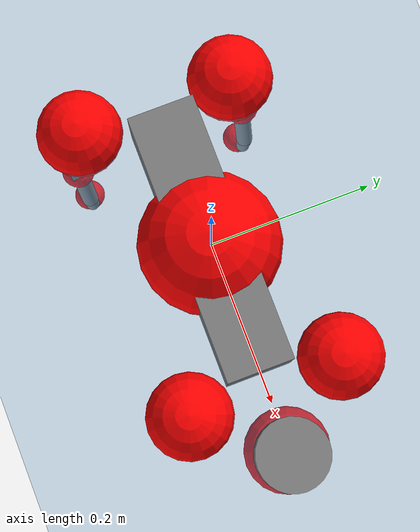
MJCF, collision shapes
<mujoco model="go2">
  <compiler angle="radian" assetdir="assets" balanceinertia="true" inertiafromgeom="false"/>

  <option timestep="0.005" density="1.2" viscosity="2e-05"/>

  <size nkey="1"/>

  <visual>
    <quality shadowsize="8192"/>
    <map shadowclip="0.5"/>
  </visual>

  <default>
    <default class="/">
      <geom contype="0" conaffinity="0" group="1" solref="-1000 -80"/>
      <site size="0.01 0.005 0.005" group="5"/>
      <general forcelimited="true" biastype="affine" gainprm="20" biasprm="0 -20 -0.5"/>
      <default class="go2">
        <joint armature="0.01" damping="0.01" frictionloss="0.2"/>
        <geom condim="1" margin="0.001"/>
        <default class="visual">
          <geom type="mesh" group="2"/>
        </default>
        <default class="collision">
          <geom group="3"/>
          <default class="foot">
            <geom size="0.022 0 0" condim="6" priority="1" friction="0.8 0.02 0.01" solimp="0.015 1 0.022"/>
          </default>
        </default>
        <default class="reward_collision_sphere">
          <geom group="5" rgba="1 0 0 1"/>
        </default>
      </default>
    </default>
  </default>

  <asset>
    <texture type="skybox" colorspace="auto" name="//unnamed_texture_0" builtin="gradient" rgb1="0.95 0.95 0.95" rgb2="0.95 0.95 0.95" width="100" height="600"/>
    <texture type="2d" colorspace="auto" name="texplane" builtin="checker" rgb1="0.345 0.575 0.748" rgb2="0.345 0.575 0.748" markrgb="1 1 1" width="512" height="512"/>
    <material name="MatPlane" class="/" texture="texplane" texuniform="true" texrepeat="2 2" specular="0.9"/>
    <material name="metal" class="/" rgba="0.9 0.95 0.95 1"/>
    <material name="black" class="/" rgba="0 0 0 1"/>
    <material name="white" class="/"/>
    <material name="gray" class="/" rgba="0.671705 0.692426 0.77427 1"/>
    <mesh name="base_0" class="/" file="base_0.obj"/>
    <mesh name="base_1" class="/" file="base_1.obj"/>
    <mesh name="base_2" class="/" file="base_2.obj"/>
    <mesh name="base_3" class="/" file="base_3.obj"/>
    <mesh name="base_4" class="/" file="base_4.obj"/>
    <mesh name="hip_0" class="/" file="hip_0.obj"/>
    <mesh name="hip_1" class="/" file="hip_1.obj"/>
    <mesh name="thigh_0" class="/" file="thigh_0.obj"/>
    <mesh name="thigh_1" class="/" file="thigh_1.obj"/>
    <mesh name="thigh_mirror_0" class="/" file="thigh_mirror_0.obj"/>
    <mesh name="thigh_mirror_1" class="/" file="thigh_mirror_1.obj"/>
    <mesh name="calf_0" class="/" file="calf_0.obj"/>
    <mesh name="calf_1" class="/" file="calf_1.obj"/>
    <mesh name="calf_mirror_0" class="/" file="calf_mirror_0.obj"/>
    <mesh name="calf_mirror_1" class="/" file="calf_mirror_1.obj"/>
    <mesh name="foot" class="/" file="foot.obj"/>
  </asset>

  <worldbody>
    <geom name="floor" class="/" size="100 100 0.125" type="plane" group="0" material="MatPlane"/>
    <light name="toplight_shadow" class="/" pos="0 0 5" dir="0.0990148 0.0990148 -0.990148" type="directional" ambient="0.04 0.04 0.04" diffuse="0.55 0.55 0.55" specular="0.12 0.12 0.12"/>
    <light name="toplight_fill" class="/" pos="0 0 5" dir="0.0990148 0.0990148 -0.990148" type="directional" castshadow="false" ambient="0.04 0.04 0.04" diffuse="0.3 0.3 0.3" specular="0.08 0.08 0.08"/>
    <body name="trunk" childclass="go2" pos="-0.00279092 -0.000693494 -0.00258312" quat="0.999999 -0.000828508 0.00112661 0.000236496">
      <inertial pos="0.016955 0.00224651 -0.00577912" quat="0.000525949 0.722129 -0.00137346 0.691757" mass="4.72424" diaginertia="0.0781232 0.0404649 0.0118924"/>
      <joint name="//unnamed_joint_0" type="free" armature="0" damping="0" frictionloss="0"/>
      <geom name="//unnamed_geom_1" class="visual" material="black" mesh="base_0"/>
      <geom name="//unnamed_geom_2" class="visual" material="black" mesh="base_1"/>
      <geom name="//unnamed_geom_3" class="visual" material="black" mesh="base_2"/>
      <geom name="//unnamed_geom_4" class="visual" material="white" mesh="base_3"/>
      <geom name="//unnamed_geom_5" class="visual" material="gray" mesh="base_4"/>
      <geom name="trunk_1" class="collision" size="0.165381 0.0411035 0.0501155" type="box"/>
      <geom name="trunk_2" class="collision" size="0.0439609 0.0395648" pos="0.266691 0 0.00863757" type="cylinder"/>
      <geom name="trunk_3" class="collision" size="0.0413233" pos="0.274177 0 -0.0518254"/>
      <geom name="//unnamed_geom_9" class="reward_collision_sphere" size="0.0879219"/>
      <geom name="//unnamed_geom_10" class="reward_collision_sphere" size="0.0527531" pos="0.262012 0 -0.0388691"/>
      <site name="imu" pos="-0.0102756 -0.00351999 0.0279529" size="0.00879219"/>
      <camera name="track" pos="0 -1.67628 0" quat="0.707107 0.707107 0 0" mode="trackcom"/>
      <camera name="ego_camera" pos="0.291956 0 0.0388691" quat="-0.5 -0.5 0.5 0.5"/>
      <body name="FL_hip" pos="0.180572 0.038941 -0.00208766" quat="1 -0.000437946 -0.000422023 0.00028294">
        <inertial pos="-0.00766918 0.000790488 -0.000855738" quat="0.492867 0.510311 0.505454 0.491102" mass="0.470001" diaginertia="0.000649182 0.000253185 0.000243307"/>
        <joint name="FL_hip_joint" pos="0 0 0" axis="0.999948 0.00955848 0.00344138" stiffness="0.00403709" range="-1.01155 1.04046" armature="0.0100518" damping="0.00546664" frictionloss="0.181147"/>
        <geom name="//unnamed_geom_11" class="visual" material="metal" mesh="hip_0"/>
        <geom name="//unnamed_geom_12" class="visual" material="gray" mesh="hip_1"/>
        <geom name="//unnamed_geom_13" class="collision" size="0.0404441 0.0175844" pos="0 0.0670514 0" quat="0.707107 0.707107 0 0" type="cylinder"/>
        <geom name="//unnamed_geom_14" class="reward_collision_sphere" size="0.0527531" pos="0 0.05867 0"/>
        <body name="FL_thigh" pos="-0.000470508 0.0796889 -0.00140557" quat="1 6.36614e-05 -4.64431e-05 2.68689e-05">
          <inertial pos="-0.0038324 -0.0202528 -0.0289296" quat="0.830097 0.0810896 -0.0236207 0.551185" mass="0.777755" diaginertia="0.00420371 0.00230947 0.00041734"/>
          <joint name="FL_thigh_joint" pos="0 0 0" axis="0.00701784 0.999896 0.0126092" stiffness="0.0134047" range="-1.56463 3.50723" armature="0.00769101" damping="0.00652304" frictionloss="0.176209"/>
          <geom name="//unnamed_geom_15" class="visual" material="metal" mesh="thigh_0"/>
          <geom name="//unnamed_geom_16" class="visual" material="gray" mesh="thigh_1"/>
          <geom name="//unnamed_geom_17" class="collision" size="0.0936368 0.0107704 0.0149467" pos="0 0 -0.0919901" quat="0.707107 0 0.707107 0" type="box"/>
          <body name="FL_calf" pos="0.000796763 0.0012312 -0.181435" quat="1 8.62329e-07 -2.42166e-06 1.19971e-06">
            <inertial pos="0.00469154 -0.00311254 -0.119193" quat="0.710336 0.00131202 -0.0047606 0.703845" mass="0.167634" diaginertia="0.00110612 0.000602443 2.55494e-05"/>
            <joint name="FL_calf_joint" pos="0 0 0" axis="-0.00906669 0.999901 -0.0107999" stiffness="0.00368211" range="-2.66817 -0.88013" armature="0.00879476" damping="0.00603307" frictionloss="0.183628"/>
            <geom name="//unnamed_geom_18" class="visual" material="gray" mesh="calf_0"/>
            <geom name="//unnamed_geom_19" class="visual" material="black" mesh="calf_1"/>
            <geom name="FL_calf0" class="collision" size="0.0105506 0.0527531" pos="0.00748606 0 -0.0518254" quat="0.994493 0 -0.104807 0" type="cylinder"/>
            <geom name="//unnamed_geom_21" class="collision" size="0.00967141 0.0285746" pos="0.0187151 0 -0.127836" quat="0.999688 0 0.0249974 0" type="cylinder"/>
            <geom name="//unnamed_geom_22" class="visual" pos="0 0 -0.18398" quat="1 0 0 0" material="black" mesh="foot"/>
            <geom name="FL_foot" class="foot" size="0.0190025" pos="-0.00187151 0 -0.18398"/>
            <geom name="//unnamed_geom_24" class="reward_collision_sphere" size="0.0219805"/>
            <geom name="//unnamed_geom_25" class="reward_collision_sphere" size="0.0219805" pos="-0.00187151 0 -0.18398"/>
            <site name="FL_foot" class="foot" pos="-0.00187151 0 -0.18398" size="0.00879219"/>
          </body>
        </body>
      </body>
      <body name="FR_hip" pos="0.183903 -0.0360399 0.00166117" quat="1 -0.000221224 -0.000104499 -0.000337359">
        <inertial pos="-0.00565334 -0.00432405 -0.00110428" quat="0.49573 0.501026 0.499147 0.50406" mass="0.467983" diaginertia="0.000624874 0.000257806 0.000234428"/>
        <joint name="FR_hip_joint" pos="0 0 0" axis="0.999998 0.00180167 0.000421832" range="-0.992972 1.02841" armature="0.00889345" damping="0.0175356" frictionloss="0.189178"/>
        <geom name="//unnamed_geom_26" class="visual" pos="0 -2.23147e-10 -9.57122e-09" quat="4.63268e-05 1 0 0" material="metal" mesh="hip_0"/>
        <geom name="//unnamed_geom_27" class="visual" pos="0 -3.61747e-10 2.36733e-08" quat="4.63268e-05 1 0 0" material="gray" mesh="hip_1"/>
        <geom name="//unnamed_geom_28" class="collision" size="0.0404441 0.0175844" pos="0 -0.0670514 0" quat="0.707107 0.707107 0 0" type="cylinder"/>
        <geom name="//unnamed_geom_29" class="reward_collision_sphere" size="0.0527531" pos="0 -0.05867 0"/>
        <body name="FR_thigh" pos="0.00273076 -0.079819 -0.00187576" quat="1 -0.000242199 -0.000578926 -0.000239855">
          <inertial pos="-0.00349628 0.0189003 -0.0296421" quat="0.553618 -0.0200861 0.0858113 0.828095" mass="0.810809" diaginertia="0.00420845 0.00246558 0.000431338"/>
          <joint name="FR_thigh_joint" pos="0 0 0" axis="-0.00352568 -0.999992 -0.00181426" range="-3.52162 1.6221" armature="0.00777137" damping="0.00959476" frictionloss="0.178627"/>
          <geom name="//unnamed_geom_30" class="visual" material="metal" mesh="thigh_mirror_0"/>
          <geom name="//unnamed_geom_31" class="visual" material="gray" mesh="thigh_mirror_1"/>
          <geom name="//unnamed_geom_32" class="collision" size="0.0936368 0.0107704 0.0149467" pos="0 0 -0.0919901" quat="0.707107 0 0.707107 0" type="box"/>
          <body name="FR_calf" pos="-0.00109536 -0.0016455 -0.182952" quat="1 2.10183e-05 4.50799e-05 -2.72755e-05">
            <inertial pos="0.0058923 0.000732594 -0.121682" quat="0.707509 0.000775768 -0.00949539 0.70664" mass="0.157646" diaginertia="0.00109062 0.000607828 2.47859e-05"/>
            <joint name="FR_calf_joint" pos="0 0 0" axis="-0.00707552 -0.999956 0.00617426" range="0.838627 2.66733" armature="0.010043" damping="0.0156692" frictionloss="0.175914"/>
            <geom name="//unnamed_geom_33" class="visual" material="gray" mesh="calf_mirror_0"/>
            <geom name="//unnamed_geom_34" class="visual" material="black" mesh="calf_mirror_1"/>
            <geom name="FR_calf0" class="collision" size="0.0114298 0.0527531" pos="0.00935757 0 -0.0518254" quat="0.995004 0 -0.0998334 0" type="cylinder"/>
            <geom name="//unnamed_geom_36" class="collision" size="0.00967141 0.0285746" pos="0.0187151 0 -0.127836" quat="0.999688 0 0.0249974 0" type="cylinder"/>
            <geom name="//unnamed_geom_37" class="visual" pos="0 0 -0.18398" quat="1 0 0 0" material="black" mesh="foot"/>
            <geom name="FR_foot" class="foot" size="0.0191365" pos="-0.00187151 0 -0.18398"/>
            <geom name="//unnamed_geom_39" class="reward_collision_sphere" size="0.0219805"/>
            <geom name="//unnamed_geom_40" class="reward_collision_sphere" size="0.0219805" pos="-0.00187151 0 -0.18398"/>
            <site name="FR_foot" class="foot" pos="-0.00187151 0 -0.18398" size="0.00879219"/>
          </body>
        </body>
      </body>
      <body name="RL_hip" pos="-0.181022 0.0359959 -0.000426481" quat="1 -7.16216e-05 -0.000196073 0.000108392">
        <inertial pos="0.00531182 0.00291459 -0.000943604" quat="0.503629 0.500125 0.494915 0.50129" mass="0.476851" diaginertia="0.000659231 0.000240435 0.000230293"/>
        <joint name="RL_hip_joint" pos="0 0 0" axis="-0.999979 -0.000798884 0.0064108" stiffness="0.00287727" range="-1.02725 1.0862" armature="0.0089693" damping="0" frictionloss="0.192923"/>
        <geom name="//unnamed_geom_41" class="visual" pos="-6.27233e-10 0 -1.22952e-07" quat="4.63268e-05 0 1 0" material="metal" mesh="hip_0"/>
        <geom name="//unnamed_geom_42" class="visual" pos="-1.01682e-09 0 -1.09041e-07" quat="4.63268e-05 0 1 0" material="gray" mesh="hip_1"/>
        <geom name="//unnamed_geom_43" class="collision" size="0.0404441 0.0175844" pos="0 0.0670514 0" quat="0.707107 0.707107 0 0" type="cylinder"/>
        <geom name="//unnamed_geom_44" class="reward_collision_sphere" size="0.0527531" pos="0 0.05867 0"/>
        <body name="RL_thigh" pos="-0.000796463 0.0784381 0.00183366" quat="1 2.37977e-05 -6.53005e-06 -2.21884e-05">
          <inertial pos="-0.00561834 -0.0193091 -0.0290518" quat="0.82898 0.0924521 -0.0136617 0.551414" mass="0.80633" diaginertia="0.00429634 0.00246799 0.000423716"/>
          <joint name="RL_thigh_joint" pos="0 0 0" axis="-0.0146068 0.999893 0.000910339" range="-0.561517 4.53492" armature="0.00953249" damping="0" frictionloss="0.174424"/>
          <geom name="//unnamed_geom_45" class="visual" material="metal" mesh="thigh_0"/>
          <geom name="//unnamed_geom_46" class="visual" material="gray" mesh="thigh_1"/>
          <geom name="//unnamed_geom_47" class="collision" size="0.0936368 0.0107704 0.0149467" pos="0 0 -0.0919901" quat="0.707107 0 0.707107 0" type="box"/>
          <body name="RL_calf" pos="-0.00229351 0.00133639 -0.187191" quat="1 1.34041e-05 0.000301925 0.000329844">
            <inertial pos="0.00849017 -0.00336288 -0.119351" quat="0.71815 -0.000390051 -0.0110563 0.695801" mass="0.159451" diaginertia="0.00107232 0.000624584 2.51981e-05"/>
            <joint name="RL_calf_joint" pos="0 0 0" axis="-0.00192072 0.999996 -0.00188292" range="-2.69741 -0.836462" armature="0.00849884" damping="0.00263324" frictionloss="0.200374"/>
            <geom name="//unnamed_geom_48" class="visual" material="gray" mesh="calf_0"/>
            <geom name="//unnamed_geom_49" class="visual" material="black" mesh="calf_1"/>
            <geom name="RL_calf0" class="collision" size="0.0114298 0.0527531" pos="0.00935757 0 -0.0518254" quat="0.995004 0 -0.0998334 0" type="cylinder"/>
            <geom name="//unnamed_geom_51" class="collision" size="0.00967141 0.0285746" pos="0.0187151 0 -0.127836" quat="0.999688 0 0.0249974 0" type="cylinder"/>
            <geom name="//unnamed_geom_52" class="visual" pos="0 0 -0.18398" quat="1 0 0 0" material="black" mesh="foot"/>
            <geom name="RL_foot" class="foot" size="0.0195972" pos="-0.00187151 0 -0.18398"/>
            <geom name="//unnamed_geom_54" class="reward_collision_sphere" size="0.0219805"/>
            <geom name="//unnamed_geom_55" class="reward_collision_sphere" size="0.0219805" pos="-0.00187151 0 -0.18398"/>
            <site name="RL_foot" class="foot" pos="-0.00187151 0 -0.18398" size="0.00879219"/>
          </body>
        </body>
      </body>
      <body name="RR_hip" pos="-0.181122 -0.0409868 -0.00121598" quat="0.999999 -0.000471815 0.000770341 0.000772004">
        <inertial pos="0.00470343 0.000658392 -0.00304209" quat="0.499245 0.497022 0.498239 0.505452" mass="0.467487" diaginertia="0.000628825 0.000243524 0.000226908"/>
        <joint name="RR_hip_joint" pos="0 0 0" axis="-0.999937 0.00976937 0.00558915" stiffness="0.00255103" range="-1.00776 0.997294" armature="0.00766667" damping="0.0027605" frictionloss="0.19063"/>
        <geom name="//unnamed_geom_56" class="visual" pos="6.23853e-10 -2.23147e-10 -1.13381e-07" quat="2.14617e-09 4.63268e-05 4.63268e-05 -1" material="metal" mesh="hip_0"/>
        <geom name="//unnamed_geom_57" class="visual" pos="1.02518e-09 -3.61747e-10 -1.32714e-07" quat="2.14617e-09 4.63268e-05 4.63268e-05 -1" material="gray" mesh="hip_1"/>
        <geom name="//unnamed_geom_58" class="collision" size="0.0404441 0.0175844" pos="0 -0.0670514 0" quat="0.707107 0.707107 0 0" type="cylinder"/>
        <geom name="//unnamed_geom_59" class="reward_collision_sphere" size="0.0527531" pos="0 -0.05867 0"/>
        <body name="RR_thigh" pos="-9.31003e-05 -0.079891 0.00106968" quat="1 6.33188e-05 0.000302659 -4.54051e-05">
          <inertial pos="-0.0061491 0.0216192 -0.0281937" quat="0.552476 -0.0196642 0.0848516 0.828966" mass="0.735392" diaginertia="0.00426028 0.00237206 0.000422401"/>
          <joint name="RR_thigh_joint" pos="0 0 0" axis="-0.000497524 -0.999999 -0.000989991" stiffness="0.00968222" range="-4.56857 0.563037" armature="0.00872974" damping="0.0162007" frictionloss="0.154513"/>
          <geom name="//unnamed_geom_60" class="visual" material="metal" mesh="thigh_mirror_0"/>
          <geom name="//unnamed_geom_61" class="visual" material="gray" mesh="thigh_mirror_1"/>
          <geom name="//unnamed_geom_62" class="collision" size="0.0936368 0.0107704 0.0149467" pos="0 0 -0.0919901" quat="0.707107 0 0.707107 0" type="box"/>
          <body name="RR_calf" pos="0.001535 0.000103096 -0.185054" quat="1 -0.000168749 -0.000253284 3.57682e-06">
            <inertial pos="0.00734891 0.000468742 -0.122473" quat="0.703187 -0.00686649 0.00325954 0.710965" mass="0.152865" diaginertia="0.0010295 0.00059154 2.43413e-05"/>
            <joint name="RR_calf_joint" pos="0 0 0" axis="0.00372032 -0.999993 -0.000216021" range="0.846771 2.77947" armature="0.00785405" damping="0.0125828" frictionloss="0.17607"/>
            <geom name="//unnamed_geom_63" class="visual" material="gray" mesh="calf_mirror_0"/>
            <geom name="//unnamed_geom_64" class="visual" material="black" mesh="calf_mirror_1"/>
            <geom name="RR_calf0" class="collision" size="0.0114298 0.0527531" pos="0.00935757 0 -0.0518254" quat="0.995004 0 -0.0998334 0" type="cylinder"/>
            <geom name="//unnamed_geom_66" class="collision" size="0.00967141 0.0285746" pos="0.0187151 0 -0.127836" quat="0.999688 0 0.0249974 0" type="cylinder"/>
            <geom name="//unnamed_geom_67" class="visual" pos="0 0 -0.18398" quat="1 0 0 0" material="black" mesh="foot"/>
            <geom name="RR_foot" class="foot" size="0.017985" pos="-0.00187151 0 -0.18398"/>
            <geom name="//unnamed_geom_69" class="reward_collision_sphere" size="0.0219805"/>
            <geom name="//unnamed_geom_70" class="reward_collision_sphere" size="0.0219805" pos="-0.00187151 0 -0.18398"/>
            <site name="RR_foot" class="foot" pos="-0.00187151 0 -0.18398" size="0.00879219"/>
          </body>
        </body>
      </body>
    </body>
  </worldbody>

  <contact>
    <pair class="/" geom1="floor" geom2="FL_foot" name="//unnamed_contact_0"/>
    <pair class="/" geom1="floor" geom2="FR_foot" name="//unnamed_contact_1"/>
    <pair class="/" geom1="floor" geom2="RL_foot" name="//unnamed_contact_2"/>
    <pair class="/" geom1="floor" geom2="RR_foot" name="//unnamed_contact_3"/>
  </contact>

  <actuator>
    <general name="FL_hip" class="/" joint="FL_hip_joint" forcerange="-20.3855 20.3855" gainprm="17.146" biasprm="0 -17.146 -0.466698"/>
    <general name="FL_thigh" class="/" joint="FL_thigh_joint" forcerange="-22.6108 22.6108" gainprm="17.146" biasprm="0 -17.146 -0.466698"/>
    <general name="FL_calf" class="/" joint="FL_calf_joint" forcerange="-37.1535 37.1535" gainprm="17.146" biasprm="0 -17.146 -0.466698"/>
    <general name="FR_hip" class="/" joint="FR_hip_joint" forcerange="-20.0124 20.0124" gainprm="17.146" biasprm="0 -17.146 -0.466698"/>
    <general name="FR_thigh" class="/" joint="FR_thigh_joint" forcerange="-22.9475 22.9475" gainprm="17.146" biasprm="0 -17.146 -0.466698"/>
    <general name="FR_calf" class="/" joint="FR_calf_joint" forcerange="-39.6587 39.6587" gainprm="17.146" biasprm="0 -17.146 -0.466698"/>
    <general name="RL_hip" class="/" joint="RL_hip_joint" forcerange="-22.0551 22.0551" gainprm="17.146" biasprm="0 -17.146 -0.466698"/>
    <general name="RL_thigh" class="/" joint="RL_thigh_joint" forcerange="-22.8445 22.8445" gainprm="17.146" biasprm="0 -17.146 -0.466698"/>
    <general name="RL_calf" class="/" joint="RL_calf_joint" forcerange="-38.5871 38.5871" gainprm="17.146" biasprm="0 -17.146 -0.466698"/>
    <general name="RR_hip" class="/" joint="RR_hip_joint" forcerange="-21.4121 21.4121" gainprm="17.146" biasprm="0 -17.146 -0.466698"/>
    <general name="RR_thigh" class="/" joint="RR_thigh_joint" forcerange="-20.1751 20.1751" gainprm="17.146" biasprm="0 -17.146 -0.466698"/>
    <general name="RR_calf" class="/" joint="RR_calf_joint" forcerange="-36.0561 36.0561" gainprm="17.146" biasprm="0 -17.146 -0.466698"/>
  </actuator>

  <sensor>
    <gyro site="imu" name="imu_angular_velocity"/>
    <velocimeter site="imu" name="imu_linear_velocity"/>
    <framelinvel objtype="site" objname="FL_foot" name="FL_foot_global_linear_velocity"/>
    <framelinvel objtype="site" objname="FR_foot" name="FR_foot_global_linear_velocity"/>
    <framelinvel objtype="site" objname="RL_foot" name="RL_foot_global_linear_velocity"/>
    <framelinvel objtype="site" objname="RR_foot" name="RR_foot_global_linear_velocity"/>
  </sensor>

  <keyframe>
    <key name="home" qpos="0 0 0.325 1 0 0 0 0.1 0.8 -1.5 -0.1 -0.8 1.5 -0.1 0.8 -1.5 0.1 -0.8 1.5"/>
  </keyframe>
</mujoco>
